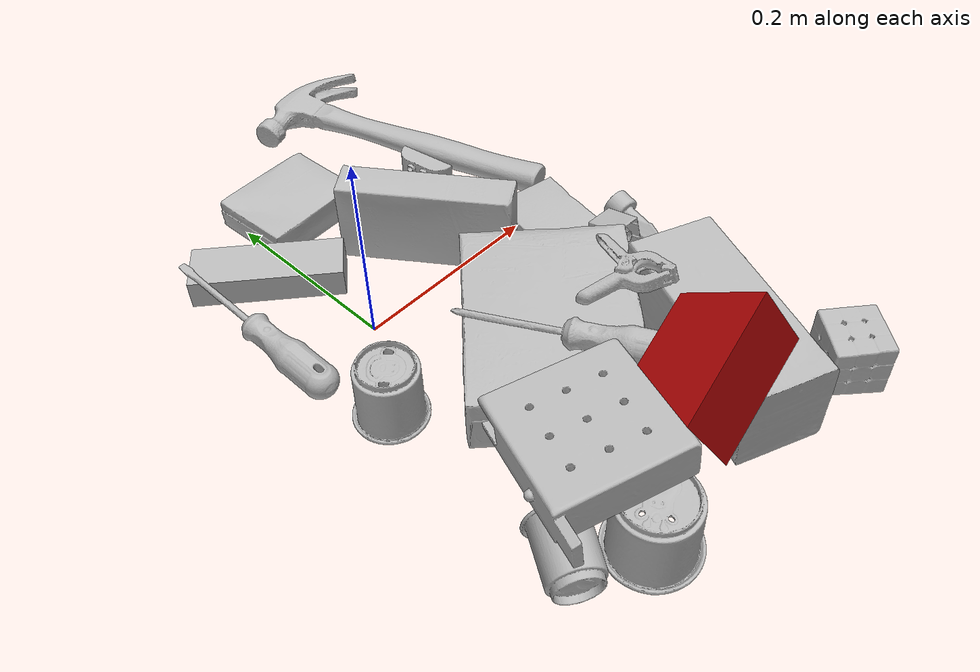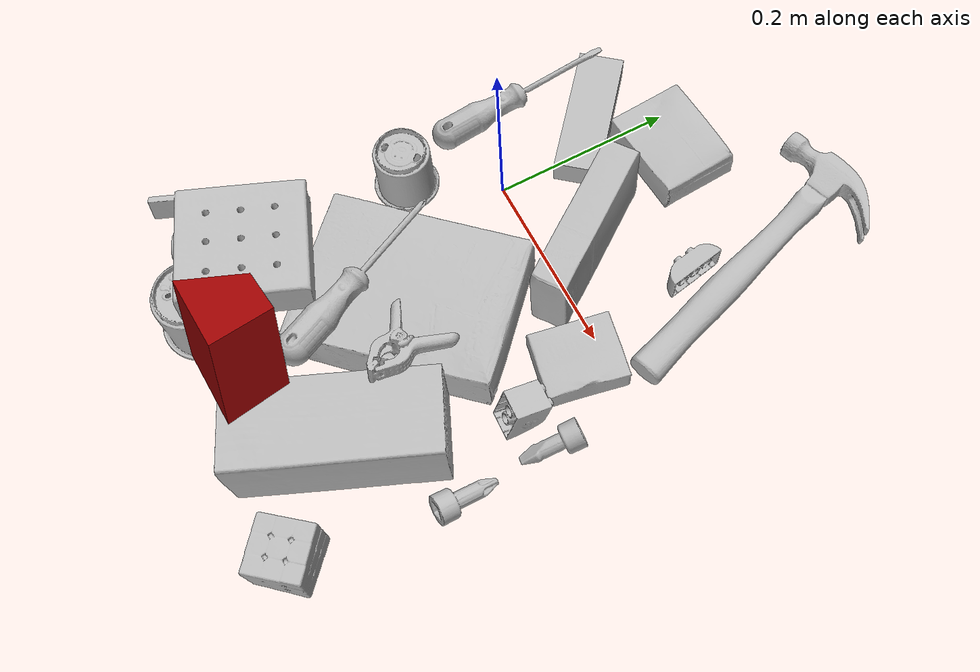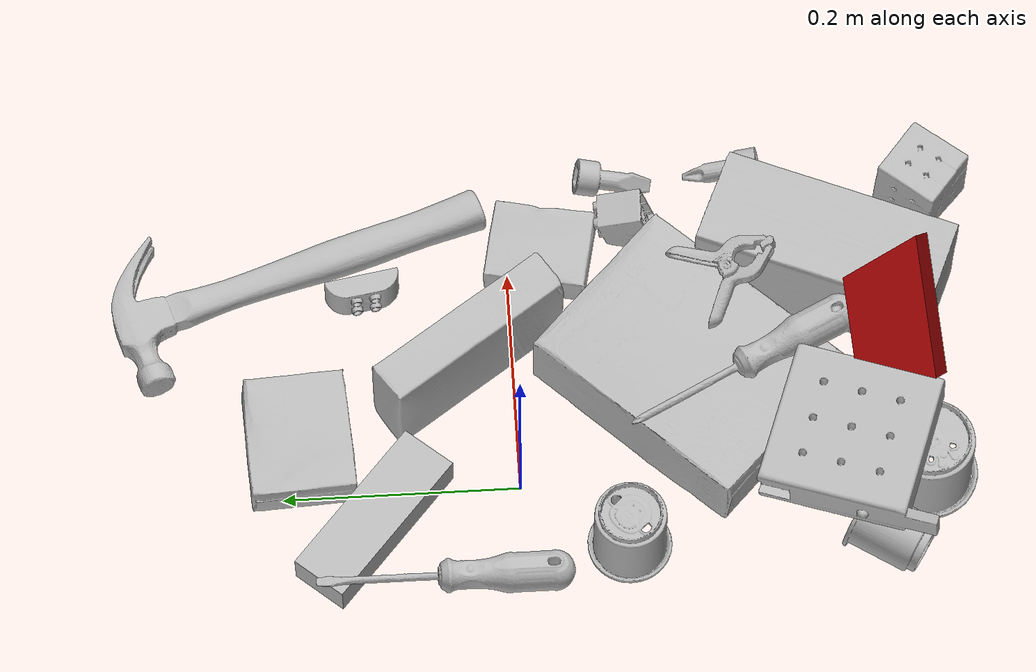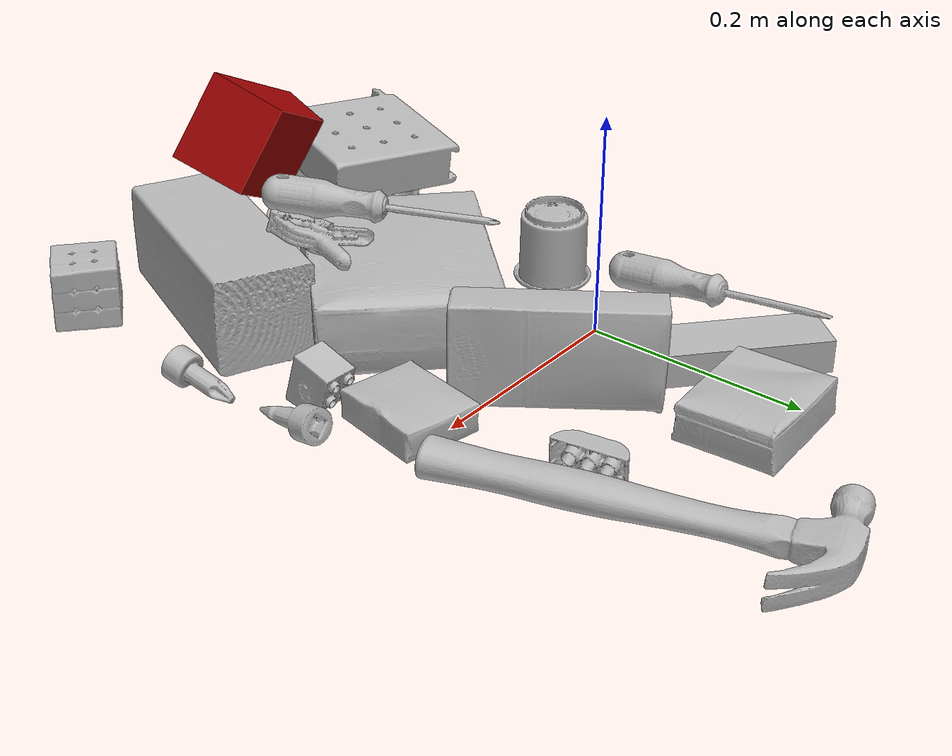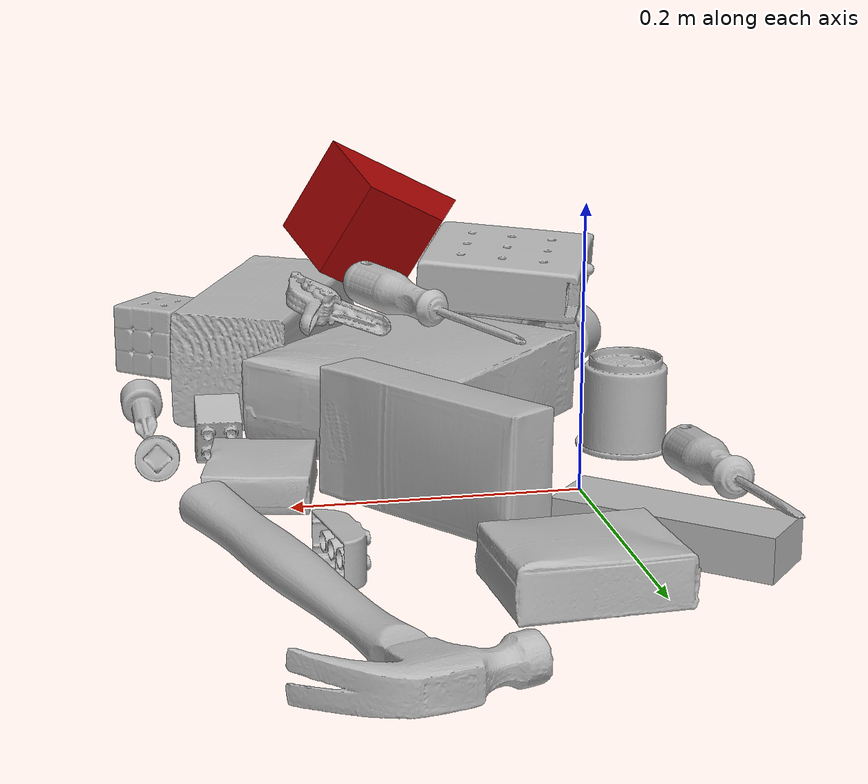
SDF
<sdf version="1.4">
  <world name="default">
    <light name="light1" type="point">
      <pose>0 0 1 0 0 0</pose>
      <diffuse>3 3 3 1</diffuse>
      <specular>3 3 3 1</specular>
    </light>
    <light name="light2" type="point">
      <pose>0 0.5 2 0 0 0</pose>
      <diffuse>1 1 1 1</diffuse>
      <specular>1 1 1 1</specular>
    </light>
    <light name="light3" type="point">
      <pose>0 0.5 2 0 0 0</pose>
      <diffuse>3 3 3 1</diffuse>
      <specular>3 3 3 1</specular>
    </light>
    <scene>
      <ambient>0.7 0.7 0.7</ambient>
    </scene>
    <model name="box21">
      <link name="link_box21">
        <collision name="default">
          <geometry>
            <mesh>
              <uri>model://cracker_box/collision_meshes/collision.obj</uri>
              <scale>1.0 1.0 1.0</scale>
            </mesh>
          </geometry>
          <surface>
            <friction>
              <ode>
                <mu>0.5</mu>
                <mu2>0.5</mu2>
              </ode>
            </friction>
          <contact>
        <ode>
            <max_vel>0</max_vel>
            <min_depth>0.0001</min_depth>
            <kp>1e8</kp>
        </ode>
    </contact></surface>
        </collision>
        <visual name="default">
          <geometry>
            <mesh>
              <uri>model://cracker_box/visual_meshes/visual.dae</uri>
              <scale>1.0 1.0 1.0</scale>
            </mesh>
          </geometry>
        </visual>
        <inertial>
          <mass>1.1849639415740967</mass>
          <pose>0.0009464144241064787 0.0002543424488976598 -0.0017029534792527556 -0.0003162077682631379 -0.011106487737543453 0.002546794536785776</pose>
          <inertia>
            <ixx>0.0030140192</ixx>
            <iyy>0.004976738</iyy>
            <izz>0.007102261</izz>
            <ixy>0</ixy>
            <ixz>0</ixz>
            <iyz>0</iyz>
          </inertia>
        </inertial>
      </link>
      <pose>0.08817121386528015 -0.14705504477024078 0.035533417016267776 3.137078716847637 -0.016573449455142768 0.8134308305649426</pose>
    </model>
    <model name="box22">
      <link name="link_box22">
        <collision name="default">
          <geometry>
            <mesh>
              <uri>model://rubiks_cube/collision_meshes/collision.obj</uri>
              <scale>1.0 1.0 1.0</scale>
            </mesh>
          </geometry>
          <surface>
            <friction>
              <ode>
                <mu>0.5</mu>
                <mu2>0.5</mu2>
              </ode>
            </friction>
          <contact>
        <ode>
            <max_vel>0</max_vel>
            <min_depth>0.0001</min_depth>
            <kp>1e8</kp>
        </ode>
    </contact></surface>
        </collision>
        <visual name="default">
          <geometry>
            <mesh>
              <uri>model://rubiks_cube/visual_meshes/visual.dae</uri>
              <scale>1.0 1.0 1.0</scale>
            </mesh>
          </geometry>
        </visual>
        <inertial>
          <mass>0.10796652734279633</mass>
          <pose>2.6721041649580002e-05 5.2569666877388954e-05 -7.264316082000732e-06 -0.054672548620525036 -0.09813983330627576 -0.03445544186372042</pose>
          <inertia>
            <ixx>5.965876e-05</ixx>
            <iyy>5.9380527e-05</iyy>
            <izz>6.0153117e-05</izz>
            <ixy>0</ixy>
            <ixz>0</ixz>
            <iyz>0</iyz>
          </inertia>
        </inertial>
      </link>
      <pose>0.25985264778137207 -0.3594425618648529 0.02905973047018051 -3.134139667823936 0.010892121344308954 -0.7276377227396457</pose>
    </model>
    <model name="box23">
      <link name="link_box23">
        <collision name="default">
          <geometry>
            <mesh>
              <uri>model://sugar_box/collision_meshes/collision.obj</uri>
              <scale>1.0 1.0 1.0</scale>
            </mesh>
          </geometry>
          <surface>
            <friction>
              <ode>
                <mu>0.5</mu>
                <mu2>0.5</mu2>
              </ode>
            </friction>
          <contact>
        <ode>
            <max_vel>0</max_vel>
            <min_depth>0.0001</min_depth>
            <kp>1e8</kp>
        </ode>
    </contact></surface>
        </collision>
        <visual name="default">
          <geometry>
            <mesh>
              <uri>model://sugar_box/visual_meshes/visual.dae</uri>
              <scale>1.0 1.0 1.0</scale>
            </mesh>
          </geometry>
        </visual>
        <inertial>
          <mass>0.8519012928009033</mass>
          <pose>0.0010343727190047503 3.8491099985549226e-05 -0.0003636480832938105 -0.00040462606756407727 0.0010506635218583888 0.002615378789044619</pose>
          <inertia>
            <ixx>0.00070980185</ixx>
            <iyy>0.0022942254</iyy>
            <izz>0.0027464617</izz>
            <ixy>0</ixy>
            <ixz>0</ixz>
            <iyz>0</iyz>
          </inertia>
        </inertial>
      </link>
      <pose>0.11098756641149521 0.037066396325826645 0.04635179042816162 -1.591760450013218 -0.009311810022675008 2.1848550386769534</pose>
    </model>
    <model name="cup1">
      <link name="link_cup1">
        <collision name="default">
          <geometry>
            <mesh>
              <uri>model://b_cups/collision_meshes/collision.obj</uri>
              <scale>1.0 1.0 1.0</scale>
            </mesh>
          </geometry>
          <surface>
            <friction>
              <ode>
                <mu>0.5</mu>
                <mu2>0.5</mu2>
              </ode>
            </friction>
          <contact>
        <ode>
            <max_vel>0</max_vel>
            <min_depth>0.0001</min_depth>
            <kp>1e8</kp>
        </ode>
    </contact></surface>
        </collision>
        <visual name="default">
          <geometry>
            <mesh>
              <uri>model://b_cups/visual_meshes/visual.dae</uri>
              <scale>1.0 1.0 1.0</scale>
            </mesh>
          </geometry>
        </visual>
        <inertial>
          <mass>0.025879299268126488</mass>
          <pose>0.0005181999877095222 0.0018058597343042493 -0.0013381816679611802 0.11356295314662153 0.03872538879904025 -0.34569789869984097</pose>
          <inertia>
            <ixx>1.6939814e-05</ixx>
            <iyy>1.6618207e-05</iyy>
            <izz>1.4254532e-05</izz>
            <ixy>0</ixy>
            <ixz>0</ixz>
            <iyz>0</iyz>
          </inertia>
        </inertial>
      </link>
      <pose>-0.06939594447612762 -0.3053814768791199 0.02766149863600731 -1.4330767744667539 0.8557584322956985 -0.45629228633923274</pose>
    </model>
    <model name="cup2">
      <link name="link_cup2">
        <collision name="default">
          <geometry>
            <mesh>
              <uri>model://g_cups/collision_meshes/collision.obj</uri>
              <scale>1.0 1.0 1.0</scale>
            </mesh>
          </geometry>
          <surface>
            <friction>
              <ode>
                <mu>0.5</mu>
                <mu2>0.5</mu2>
              </ode>
            </friction>
          <contact>
        <ode>
            <max_vel>0</max_vel>
            <min_depth>0.0001</min_depth>
            <kp>1e8</kp>
        </ode>
    </contact></surface>
        </collision>
        <visual name="default">
          <geometry>
            <mesh>
              <uri>model://g_cups/visual_meshes/visual.dae</uri>
              <scale>1.0 1.0 1.0</scale>
            </mesh>
          </geometry>
        </visual>
        <inertial>
          <mass>0.06683293730020523</mass>
          <pose>-0.0007946278783492744 -4.206685844110325e-05 -0.002132937777787447 -0.21382591566164685 -0.31410327542238353 0.3112138520870617</pose>
          <inertia>
            <ixx>7.8009005e-05</ixx>
            <iyy>7.7743636e-05</iyy>
            <izz>8.080389e-05</izz>
            <ixy>0</ixy>
            <ixz>0</ixz>
            <iyz>0</iyz>
          </inertia>
        </inertial>
      </link>
      <pose>-0.0062017906457185745 -0.3405718505382538 0.037120357155799866 3.141351743907004 0.0001684496197364074 2.2138531725013486</pose>
    </model>
    <model name="box11">
      <link name="link_box11">
        <collision name="default">
          <geometry>
            <mesh>
              <uri>model://wood_block/collision_meshes/collision.obj</uri>
              <scale>1.0 1.0 1.0</scale>
            </mesh>
          </geometry>
          <surface>
            <friction>
              <ode>
                <mu>0.5</mu>
                <mu2>0.5</mu2>
              </ode>
            </friction>
          <contact>
        <ode>
            <max_vel>0</max_vel>
            <min_depth>0.0001</min_depth>
            <kp>1e8</kp>
        </ode>
    </contact></surface>
        </collision>
        <visual name="default">
          <geometry>
            <mesh>
              <uri>model://wood_block/visual_meshes/visual.dae</uri>
              <scale>1.0 1.0 1.0</scale>
            </mesh>
          </geometry>
        </visual>
        <inertial>
          <mass>0.9227498173713684</mass>
          <pose>-5.813315056002466e-06 -0.0005708094104193151 0.0002640858292579651 -0.05221074847543751 -0.005192695234575722 -0.00686137748598008</pose>
          <inertia>
            <ixx>0.001234779</ixx>
            <iyy>0.0039006667</iyy>
            <izz>0.0038860766</izz>
            <ixy>0</ixy>
            <ixz>0</ixz>
            <iyz>0</iyz>
          </inertia>
        </inertial>
      </link>
      <pose>0.1829884648323059 -0.268990159034729 0.04570199176669121 1.5680083004064882 -0.0069487556398240375 1.166560120077732</pose>
    </model>
    <model name="box12">
      <link name="link_box12">
        <collision name="default">
          <geometry>
            <mesh>
              <uri>model://pudding_box/collision_meshes/collision.obj</uri>
              <scale>1.0 1.0 1.0</scale>
            </mesh>
          </geometry>
          <surface>
            <friction>
              <ode>
                <mu>0.5</mu>
                <mu2>0.5</mu2>
              </ode>
            </friction>
          <contact>
        <ode>
            <max_vel>0</max_vel>
            <min_depth>0.0001</min_depth>
            <kp>1e8</kp>
        </ode>
    </contact></surface>
        </collision>
        <visual name="default">
          <geometry>
            <mesh>
              <uri>model://pudding_box/visual_meshes/visual.dae</uri>
              <scale>1.0 1.0 1.0</scale>
            </mesh>
          </geometry>
        </visual>
        <inertial>
          <mass>0.23326139152050018</mass>
          <pose>0.0004894821904599667 0.0008067885646596551 -0.0005188827635720372 0.0052131032034861725 -0.006603797335681708 0.02007982515858456</pose>
          <inertia>
            <ixx>0.00026369</ixx>
            <iyy>0.00017741251</iyy>
            <izz>0.00038940719</izz>
            <ixy>0</ixy>
            <ixz>0</ixz>
            <iyz>0</iyz>
          </inertia>
        </inertial>
      </link>
      <pose>0.046926598995923996 0.183524489402771 0.018660489469766617 3.1339831592707026 -0.02695230515486937 1.6323990973302558</pose>
    </model>
    <model name="box13">
      <link name="link_box13">
        <collision name="default">
          <geometry>
            <mesh>
              <uri>model://gelatin_box/collision_meshes/collision.obj</uri>
              <scale>1.0 1.0 1.0</scale>
            </mesh>
          </geometry>
          <surface>
            <friction>
              <ode>
                <mu>0.5</mu>
                <mu2>0.5</mu2>
              </ode>
            </friction>
          <contact>
        <ode>
            <max_vel>0</max_vel>
            <min_depth>0.0001</min_depth>
            <kp>1e8</kp>
        </ode>
    </contact></surface>
        </collision>
        <visual name="default">
          <geometry>
            <mesh>
              <uri>model://gelatin_box/visual_meshes/visual.dae</uri>
              <scale>1.0 1.0 1.0</scale>
            </mesh>
          </geometry>
        </visual>
        <inertial>
          <mass>0.0997389405965805</mass>
          <pose>0.0004319618456065655 0.00011156871187267825 -0.0003640321083366871 -0.001050372080915675 -0.004755817759010177 0.0164405576084854</pose>
          <inertia>
            <ixx>7.040755e-05</ixx>
            <iyy>5.0291743e-05</iyy>
            <izz>0.000107175976</izz>
            <ixy>0</ixy>
            <ixz>0</ixz>
            <iyz>0</iyz>
          </inertia>
        </inertial>
      </link>
      <pose>0.21642541885375977 -0.029031964018940926 0.01516831573098898 0.005597463384331962 -0.007304576151403966 -0.20880583617569184</pose>
    </model>
    <model name="box14">
      <link name="link_box14">
        <collision name="default">
          <geometry>
            <mesh>
              <uri>model://jenga/collision_meshes/collision.obj</uri>
              <scale>1.0 1.0 1.0</scale>
            </mesh>
          </geometry>
          <surface>
            <friction>
              <ode>
                <mu>0.5</mu>
                <mu2>0.5</mu2>
              </ode>
            </friction>
          <contact>
        <ode>
            <max_vel>0</max_vel>
            <min_depth>0.0001</min_depth>
            <kp>1e8</kp>
        </ode>
    </contact></surface>
        </collision>
        <visual name="default">
          <geometry>
            <mesh>
              <uri>model://jenga/visual_meshes/visual.dae</uri>
              <scale>1.0 1.0 1.0</scale>
            </mesh>
          </geometry>
        </visual>
        <inertial>
          <mass>0.23366476595401764</mass>
          <pose>-2.502855807051674e-07 -0.0001025000965455547 -4.092339804628864e-05 0.0 -7.34215461761844e-07 0.0</pose>
          <inertia>
            <ixx>6.466071e-05</ixx>
            <iyy>0.0004381392</iyy>
            <izz>0.00046775083</izz>
            <ixy>0</ixy>
            <ixz>0</ixz>
            <iyz>0</iyz>
          </inertia>
        </inertial>
      </link>
      <pose>-0.027745986357331276 0.12372467666864395 0.015000013634562492 3.1415919178663527 2.0251363870590915e-07 2.435077269463098</pose>
    </model>
    <model name="cup15">
      <link name="link_cup15">
        <collision name="default">
          <geometry>
            <mesh>
              <uri>model://d_cups/collision_meshes/collision.obj</uri>
              <scale>1.0 1.0 1.0</scale>
            </mesh>
          </geometry>
          <surface>
            <friction>
              <ode>
                <mu>0.5</mu>
                <mu2>0.5</mu2>
              </ode>
            </friction>
          <contact>
        <ode>
            <max_vel>0</max_vel>
            <min_depth>0.0001</min_depth>
            <kp>1e8</kp>
        </ode>
    </contact></surface>
        </collision>
        <visual name="default">
          <geometry>
            <mesh>
              <uri>model://d_cups/visual_meshes/visual.dae</uri>
              <scale>1.0 1.0 1.0</scale>
            </mesh>
          </geometry>
        </visual>
        <inertial>
          <mass>0.05354860797524452</mass>
          <pose>0.000806806143373251 0.001911740517243743 -0.002266649389639497 0.240133395025133 -0.24708811164710584 0.5942101592185234</pose>
          <inertia>
            <ixx>4.4832785e-05</ixx>
            <iyy>4.470303e-05</iyy>
            <izz>4.0581297e-05</izz>
            <ixy>0</ixy>
            <ixz>0</ixz>
            <iyz>0</iyz>
          </inertia>
        </inertial>
      </link>
      <pose>-0.05730303004384041 -0.08787841349840164 0.03448905050754547 -3.141592318359535 -2.4843001237769813e-07 -1.8482097220742812</pose>
    </model>
    <model name="toy1">
      <link name="link_toy1">
        <collision name="default">
          <geometry>
            <mesh>
              <uri>model://d_toy_airplane/collision_meshes/collision.obj</uri>
              <scale>1.0 1.0 1.0</scale>
            </mesh>
          </geometry>
          <surface>
            <friction>
              <ode>
                <mu>0.5</mu>
                <mu2>0.5</mu2>
              </ode>
            </friction>
          <contact>
        <ode>
            <max_vel>0</max_vel>
            <min_depth>0.0001</min_depth>
            <kp>1e8</kp>
        </ode>
    </contact></surface>
        </collision>
        <visual name="default">
          <geometry>
            <mesh>
              <uri>model://d_toy_airplane/visual_meshes/visual.dae</uri>
              <scale>1.0 1.0 1.0</scale>
            </mesh>
          </geometry>
        </visual>
        <inertial>
          <mass>0.01055214088410139</mass>
          <pose>9.410294296685606e-05 -5.809328649775125e-05 -0.011728094890713692 0.00026701540047293157 0.004678982739479609 0.5194739606880012</pose>
          <inertia>
            <ixx>3.1633276e-06</ixx>
            <iyy>3.1657132e-06</iyy>
            <izz>9.55029e-07</izz>
            <ixy>0</ixy>
            <ixz>0</ixz>
            <iyz>0</iyz>
          </inertia>
        </inertial>
      </link>
      <pose>0.2859022915363312 -0.1890166848897934 0.011753436177968979 1.7936022059200245 0.4923619738434266 -3.01429131561811</pose>
    </model>
    <model name="toy2">
      <link name="link_toy2">
        <collision name="default">
          <geometry>
            <mesh>
              <uri>model://d_lego_duplo/collision_meshes/collision.obj</uri>
              <scale>1.0 1.0 1.0</scale>
            </mesh>
          </geometry>
          <surface>
            <friction>
              <ode>
                <mu>0.5</mu>
                <mu2>0.5</mu2>
              </ode>
            </friction>
          <contact>
        <ode>
            <max_vel>0</max_vel>
            <min_depth>0.0001</min_depth>
            <kp>1e8</kp>
        </ode>
    </contact></surface>
        </collision>
        <visual name="default">
          <geometry>
            <mesh>
              <uri>model://d_lego_duplo/visual_meshes/visual.dae</uri>
              <scale>1.0 1.0 1.0</scale>
            </mesh>
          </geometry>
        </visual>
        <inertial>
          <mass>0.039816875010728836</mass>
          <pose>0.0028305640444159508 0.00016366131603717804 0.000858980929479003 0.08010950238605453 -0.3835521959243733 0.0010296761363168562</pose>
          <inertia>
            <ixx>7.70796e-06</ixx>
            <iyy>1.0939688e-05</iyy>
            <izz>1.0549791e-05</izz>
            <ixy>0</ixy>
            <ixz>0</ixz>
            <iyz>0</iyz>
          </inertia>
        </inertial>
      </link>
      <pose>0.23819248378276825 -0.10181552171707153 0.019664956256747246 -3.132788007692166 -1.297973448499377 1.524470281673324</pose>
    </model>
    <model name="toy3">
      <link name="link_toy3">
        <collision name="default">
          <geometry>
            <mesh>
              <uri>model://nine_hole_peg_test/collision_meshes/collision.obj</uri>
              <scale>1.0 1.0 1.0</scale>
            </mesh>
          </geometry>
          <surface>
            <friction>
              <ode>
                <mu>0.5</mu>
                <mu2>0.5</mu2>
              </ode>
            </friction>
          <contact>
        <ode>
            <max_vel>0</max_vel>
            <min_depth>0.0001</min_depth>
            <kp>1e8</kp>
        </ode>
    </contact></surface>
        </collision>
        <visual name="default">
          <geometry>
            <mesh>
              <uri>model://nine_hole_peg_test/visual_meshes/visual.dae</uri>
              <scale>1.0 1.0 1.0</scale>
            </mesh>
          </geometry>
        </visual>
        <inertial>
          <mass>0.7048692107200623</mass>
          <pose>-0.0046173869632184505 -0.009647614322602749 2.6460689696250483e-05 -0.0014666794682547425 0.0007194190753660851 -0.6342416580414534</pose>
          <inertia>
            <ixx>0.0011021789</ixx>
            <iyy>0.0010290928</iyy>
            <izz>0.0019313421</izz>
            <ixy>0</ixy>
            <ixz>0</ixz>
            <iyz>0</iyz>
          </inertia>
        </inertial>
      </link>
      <pose>-0.02021414041519165 -0.28041872382164 0.0923711284995079 0.059564599593740566 0.059934377923057724 2.7928711350444853</pose>
    </model>
    <model name="toy4">
      <link name="link_toy4">
        <collision name="default">
          <geometry>
            <mesh>
              <uri>model://a_lego_duplo/collision_meshes/collision.obj</uri>
              <scale>1.0 1.0 1.0</scale>
            </mesh>
          </geometry>
          <surface>
            <friction>
              <ode>
                <mu>0.5</mu>
                <mu2>0.5</mu2>
              </ode>
            </friction>
          <contact>
        <ode>
            <max_vel>0</max_vel>
            <min_depth>0.0001</min_depth>
            <kp>1e8</kp>
        </ode>
    </contact></surface>
        </collision>
        <visual name="default">
          <geometry>
            <mesh>
              <uri>model://a_lego_duplo/visual_meshes/visual.dae</uri>
              <scale>1.0 1.0 1.0</scale>
            </mesh>
          </geometry>
        </visual>
        <inertial>
          <mass>0.021006127819418907</mass>
          <pose>-0.00011337678006384522 0.00018517556600272655 0.0003692602913361043 -0.014116980161978756 -0.00012565077681184441 6.142327078429463e-05</pose>
          <inertia>
            <ixx>2.6931523e-06</ixx>
            <iyy>6.033251e-06</iyy>
            <izz>7.473524e-06</izz>
            <ixy>0</ixy>
            <ixz>0</ixz>
            <iyz>0</iyz>
          </inertia>
        </inertial>
      </link>
      <pose>0.1817464530467987 0.12310727685689926 0.016109002754092216 1.5707962153990258 -2.2054948451833766e-08 -1.3997193915898394</pose>
    </model>
    <model name="toy5">
      <link name="link_toy5">
        <collision name="default">
          <geometry>
            <mesh>
              <uri>model://e_toy_airplane/collision_meshes/collision.obj</uri>
              <scale>1.0 1.0 1.0</scale>
            </mesh>
          </geometry>
          <surface>
            <friction>
              <ode>
                <mu>0.5</mu>
                <mu2>0.5</mu2>
              </ode>
            </friction>
          <contact>
        <ode>
            <max_vel>0</max_vel>
            <min_depth>0.0001</min_depth>
            <kp>1e8</kp>
        </ode>
    </contact></surface>
        </collision>
        <visual name="default">
          <geometry>
            <mesh>
              <uri>model://e_toy_airplane/visual_meshes/visual.dae</uri>
              <scale>1.0 1.0 1.0</scale>
            </mesh>
          </geometry>
        </visual>
        <inertial>
          <mass>0.02451101876795292</mass>
          <pose>0.00011740468471543863 -2.248291639261879e-05 -0.011187203228473663 0.00551850103187323 0.009228285956806933 0.150416364683818</pose>
          <inertia>
            <ixx>7.481042e-06</ixx>
            <iyy>7.4045165e-06</iyy>
            <izz>2.2483475e-06</izz>
            <ixy>0</ixy>
            <ixz>0</ixz>
            <iyz>0</iyz>
          </inertia>
        </inertial>
      </link>
      <pose>0.28131988644599915 -0.09600965678691864 0.01146760955452919 -2.041713593687783 -1.0864485222577076 -2.8104437300896667</pose>
    </model>
    <model name="toy6">
      <link name="link_toy6">
        <collision name="default">
          <geometry>
            <mesh>
              <uri>model://prism/collision_meshes/collision.obj</uri>
              <scale>1.0 1.0 1.0</scale>
            </mesh>
          </geometry>
          <surface>
            <friction>
              <ode>
                <mu>0.5</mu>
                <mu2>0.5</mu2>
              </ode>
            </friction>
          <contact>
        <ode>
            <max_vel>0</max_vel>
            <min_depth>0.0001</min_depth>
            <kp>1e8</kp>
        </ode>
    </contact></surface>
        </collision>
        <visual name="default">
          <geometry>
            <mesh>
              <uri>model://prism/visual_meshes/visual.dae</uri>
              <scale>1.0 1.0 1.0</scale>
            </mesh>
          </geometry>
        </visual>
        <inertial>
          <mass>0.639074981212616</mass>
          <pose>-9.85359656624496e-05 -4.96157269935793e-07 -0.003386910306289792 0.0 0.006559180766136186 0.0</pose>
          <inertia>
            <ixx>0.0005767573</ixx>
            <iyy>0.0006970186</iyy>
            <izz>0.0008537644</izz>
            <ixy>0</ixy>
            <ixz>0</ixz>
            <iyz>0</iyz>
          </inertia>
        </inertial>
      </link>
      <pose>0.0879429280757904 -0.31401875615119934 0.12136329710483551 1.8369266580308294 0.48205078248937994 -3.0381817765827352</pose>
    </model>
    <model name="hardware1">
      <link name="link_hardware1">
        <collision name="default">
          <geometry>
            <mesh>
              <uri>model://medium_clamp/collision_meshes/collision.obj</uri>
              <scale>1.0 1.0 1.0</scale>
            </mesh>
          </geometry>
          <surface>
            <friction>
              <ode>
                <mu>0.5</mu>
                <mu2>0.5</mu2>
              </ode>
            </friction>
          <contact>
        <ode>
            <max_vel>0</max_vel>
            <min_depth>0.0001</min_depth>
            <kp>1e8</kp>
        </ode>
    </contact></surface>
        </collision>
        <visual name="default">
          <geometry>
            <mesh>
              <uri>model://medium_clamp/visual_meshes/visual.dae</uri>
              <scale>1.0 1.0 1.0</scale>
            </mesh>
          </geometry>
        </visual>
        <inertial>
          <mass>0.01437164656817913</mass>
          <pose>0.005390993785113096 0.00039532355731353164 -0.0001222158025484532 -0.001226922255807767 0.0025845058861846287 0.038207728721457376</pose>
          <inertia>
            <ixx>3.9153533e-06</ixx>
            <iyy>5.697947e-06</iyy>
            <izz>8.776544e-06</izz>
            <ixy>0</ixy>
            <ixz>0</ixz>
            <iyz>0</iyz>
          </inertia>
        </inertial>
      </link>
      <pose>0.15118923783302307 -0.18175257742404938 0.09146233648061752 -2.9873658520715485 -0.22279051577490228 -1.1495248382654857</pose>
    </model>
    <model name="hardware2">
      <link name="link_hardware2">
        <collision name="default">
          <geometry>
            <mesh>
              <uri>model://hammer/collision_meshes/collision.obj</uri>
              <scale>1.0 1.0 1.0</scale>
            </mesh>
          </geometry>
          <surface>
            <friction>
              <ode>
                <mu>0.5</mu>
                <mu2>0.5</mu2>
              </ode>
            </friction>
          <contact>
        <ode>
            <max_vel>0</max_vel>
            <min_depth>0.0001</min_depth>
            <kp>1e8</kp>
        </ode>
    </contact></surface>
        </collision>
        <visual name="default">
          <geometry>
            <mesh>
              <uri>model://hammer/visual_meshes/visual.dae</uri>
              <scale>1.0 1.0 1.0</scale>
            </mesh>
          </geometry>
        </visual>
        <inertial>
          <mass>0.29233166575431824</mass>
          <pose>0.009415771812200546 -0.011892357841134071 -0.0001235063245985657 0.02315535385536088 -0.004792164028838156 -0.01276032390705471</pose>
          <inertia>
            <ixx>0.0001252207</ixx>
            <iyy>0.003393116</iyy>
            <izz>0.0034903311</izz>
            <ixy>0</ixy>
            <ixz>0</ixz>
            <iyz>0</iyz>
          </inertia>
        </inertial>
      </link>
      <pose>0.2153889238834381 0.19239751994609833 0.014978240244090557 3.12376804453801 -0.005048177495932528 1.8859424867211108</pose>
    </model>
    <model name="hardware3">
      <link name="link_hardware3">
        <collision name="default">
          <geometry>
            <mesh>
              <uri>model://phillips_screwdriver/collision_meshes/collision.obj</uri>
              <scale>1.0 1.0 1.0</scale>
            </mesh>
          </geometry>
          <surface>
            <friction>
              <ode>
                <mu>0.5</mu>
                <mu2>0.5</mu2>
              </ode>
            </friction>
          <contact>
        <ode>
            <max_vel>0</max_vel>
            <min_depth>0.0001</min_depth>
            <kp>1e8</kp>
        </ode>
    </contact></surface>
        </collision>
        <visual name="default">
          <geometry>
            <mesh>
              <uri>model://phillips_screwdriver/visual_meshes/visual.dae</uri>
              <scale>1.0 1.0 1.0</scale>
            </mesh>
          </geometry>
        </visual>
        <inertial>
          <mass>0.11685379594564438</mass>
          <pose>-0.04777182638645172 0.0010362302418798208 -0.0004555549821816385 -0.15721778382646787 0.005850995328295584 -0.002156740385256481</pose>
          <inertia>
            <ixx>1.3729124e-05</ixx>
            <iyy>0.00017213916</iyy>
            <izz>0.00017228544</izz>
            <ixy>0</ixy>
            <ixz>0</ixz>
            <iyz>0</iyz>
          </inertia>
        </inertial>
      </link>
      <pose>0.06501786410808563 -0.19286204874515533 0.08551087975502014 -1.7056526503225151 0.036109945093315395 2.029646210923005</pose>
    </model>
    <model name="hardware4">
      <link name="link_hardware4">
        <collision name="default">
          <geometry>
            <mesh>
              <uri>model://flat_screwdriver/collision_meshes/collision.obj</uri>
              <scale>1.0 1.0 1.0</scale>
            </mesh>
          </geometry>
          <surface>
            <friction>
              <ode>
                <mu>0.5</mu>
                <mu2>0.5</mu2>
              </ode>
            </friction>
          <contact>
        <ode>
            <max_vel>0</max_vel>
            <min_depth>0.0001</min_depth>
            <kp>1e8</kp>
        </ode>
    </contact></surface>
        </collision>
        <visual name="default">
          <geometry>
            <mesh>
              <uri>model://flat_screwdriver/visual_meshes/visual.dae</uri>
              <scale>1.0 1.0 1.0</scale>
            </mesh>
          </geometry>
        </visual>
        <inertial>
          <mass>0.10915977507829666</mass>
          <pose>-0.0489187091588974 -0.0006576799787580967 -0.000614091579336673 -0.5614402636475724 -0.003233725963840683 0.006982283174401888</pose>
          <inertia>
            <ixx>1.2897148e-05</ixx>
            <iyy>0.0001637322</iyy>
            <izz>0.00016365637</izz>
            <ixy>0</ixy>
            <ixz>0</ixz>
            <iyz>0</iyz>
          </inertia>
        </inertial>
      </link>
      <pose>-0.08749539405107498 0.06512923538684845 0.025770584121346474 -0.15669825248911082 -0.09232783141915646 1.6013751091822082</pose>
    </model>
  <physics type="ode">
      <max_contacts>50</max_contacts>
      <ode>
        <solver>
          <type>quick</type>
          <iters>75</iters>
        </solver>
        <constraints>
          <contact_max_correcting_vel>0</contact_max_correcting_vel>
          <contact_surface_layer>0</contact_surface_layer>
        </constraints>
      </ode>
    </physics></world>
</sdf>
